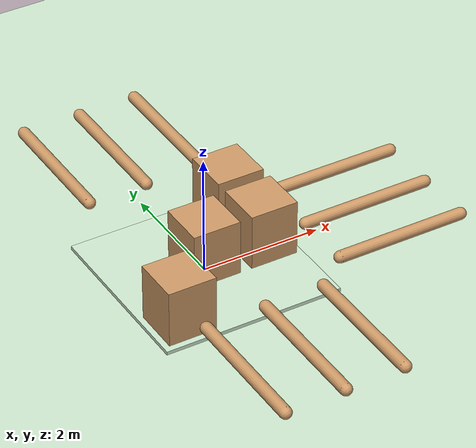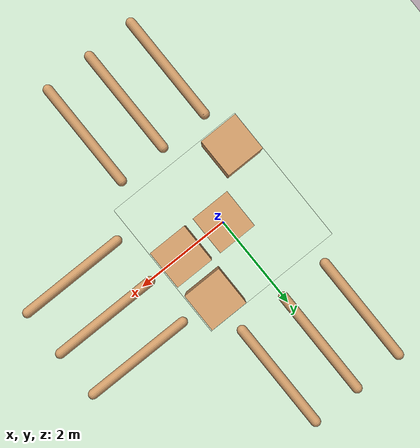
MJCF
<?xml version="1.0" encoding="UTF-8" ?>
<mujoco model="piston_arena">
    <compiler angle="degree" coordinate="global" inertiafromgeom="true"/>
    <default>
        <joint armature="1" damping="1"/>
        <geom conaffinity="1" condim="1" contype="1" margin="0.001" material="geom0" rgba="0.8 0.6 0.4 1" solimp="0.8 0.8 0.01" solref="0.02 1"/>
        <position ctrllimited="true" ctrlrange="0 3"/>
    </default>
    <option integrator="RK4" timestep="0.002"/>
    <visual>
        <map znear="0.02"/>
    </visual>
    <worldbody>
        <light cutoff="100" diffuse="1 1 1" dir="0 0 -1.3" directional="true" exponent="1" pos="0 0 1.3" specular="0.1 0.1 0.1"/>
        <geom type="plane" name="floor" size="20 20 0.01" pos="0 0 0" rgba="0.8 0.9 0.8 1" material="MatPlane" conaffinity="1" condim="3" />

        <geom type="box" name="stage" size="1.5 1.5 0.05" pos="0 0 0" rgba="0.8 0.9 0.8 1" material="geom0" conaffinity="1" condim="3" />

        <body>
            <geom type="box" pos="1 1 0.5" size="0.4 0.4 0.5" material="geom1"/>
        </body>
        <body>
            <geom type="box" pos="1 0 0.5" size="0.4 0.4 0.5" material="geom1"/>
        </body>
        <body>
            <geom type="box" pos="0 0 0.5" size="0.4 0.4 0.5" material="geom1"/>
        </body>
        <body>
            <geom type="box" pos="-1 -1 0.5" size="0.4 0.4 0.5" material="geom1"/>
        </body>

        <body name="piston0">
            <joint name="piston0-slider" type="slide" axis="0 -1 0" damping="1000"/>
            <geom type="capsule" fromto="1 4 0.5 1 1.8 0.5" size="0.1" material="geom2"/>
            <site name="piston_tip0" pos="1 1.8 0.5" type="box" group="4" size="0.2 0.2 0.2"/>
        </body>

        <body name="piston1">
            <joint name="piston1-slider" type="slide" axis="0 -1 0" damping="1000"/>
            <geom type="capsule" fromto="0 4 0.5 0 1.8 0.5" size="0.1" material="geom2"/>
            <site name="piston_tip1" pos="0 1.8 0.5" type="box" group="4" size="0.2 0.2 0.2"/>
        </body>

        <body name="piston2">
            <joint name="piston2-slider" type="slide" axis="0 -1 0" damping="1000"/>
            <geom type="capsule" fromto="-1 4 0.5 -1 1.8 0.5" size="0.1" material="geom2"/>
            <site name="piston_tip2" pos="-1 1.8 0.5" type="box" group="4" size="0.2 0.2 0.2"/>
        </body>

        <body name="piston3">
            <joint name="piston3-slider" type="slide" axis="-1 0 0" damping="1000"/>
            <geom type="capsule" fromto="1.8 1 0.2 4 1 0.2 " size="0.1" material="geom2"/>
            <site name="piston_tip3" pos="1.8 1 0.2" type="box" group="4" size="0.2 0.2 0.2"/>
        </body>

        <body name="piston4">
            <joint name="piston4-slider" type="slide" axis="-1 0 0" damping="1000"/>
            <geom type="capsule" fromto="1.8 0 0.2 4 0 0.2 " size="0.1" material="geom2"/>
            <site name="piston_tip4" pos="1.8 0 0.2" type="box" group="4" size="0.2 0.2 0.2"/>
        </body>

        <body name="piston5">
            <joint name="piston5-slider" type="slide" axis="-1 0 0" damping="1000"/>
            <geom type="capsule" fromto="1.8 -1 0.2 4 -1 0.2 " size="0.1" material="geom2"/>
            <site name="piston_tip5" pos="1.8 -1 0.2" type="box" group="4" size="0.2 0.2 0.2"/>
        </body>

        <body name="piston6">
            <joint name="piston6-slider" type="slide" axis="0 1 0" damping="1000"/>
            <geom type="capsule" fromto="1 -4 0.5 1 -1.8 0.5" size="0.1" material="geom2"/>
            <site name="piston_tip6" pos="1 -1.8 0.5" type="box" group="4" size="0.2 0.2 0.2"/>
        </body>

        <body name="piston7">
            <joint name="piston7-slider" type="slide" axis="0 1 0" damping="1000"/>
            <geom type="capsule" fromto="0 -4 0.5 0 -1.8 0.5" size="0.1" material="geom2"/>
            <site name="piston_tip7" pos="0 -1.8 0.5" type="box" group="4" size="0.2 0.2 0.2"/>
        </body>

        <body name="piston8">
            <joint name="piston8-slider" type="slide" axis="0 1 0" damping="1000"/>
            <geom type="capsule" fromto="-1 -4 0.5 -1 -1.8 0.5" size="0.1" material="geom2"/>
            <site name="piston_tip8" pos="-1 -1.8 0.5" type="box" group="4" size="0.2 0.2 0.2"/>
        </body>

    </worldbody>

    <actuator>
        <position joint="piston0-slider" kp="10000"/>
        <position joint="piston1-slider" kp="10000"/>
        <position joint="piston2-slider" kp="10000"/>
        <position joint="piston3-slider" kp="10000"/>
        <position joint="piston4-slider" kp="10000"/>
        <position joint="piston5-slider" kp="10000"/>
        <position joint="piston6-slider" kp="10000"/>
        <position joint="piston7-slider" kp="10000"/>
        <position joint="piston8-slider" kp="10000"/>
    </actuator>

    <sensor>
        <touch name="s_piston0" site="piston_tip0"/>
        <touch name="s_piston1" site="piston_tip1"/>
        <touch name="s_piston2" site="piston_tip2"/>
        <touch name="s_piston3" site="piston_tip3"/>
        <touch name="s_piston4" site="piston_tip4"/>
        <touch name="s_piston5" site="piston_tip5"/>
        <touch name="s_piston6" site="piston_tip6"/>
        <touch name="s_piston7" site="piston_tip7"/>
        <touch name="s_piston8" site="piston_tip8"/>
    </sensor>

    <asset>
        <texture name="texplane" builtin="checker" type="2d" height="100" width="100" rgb1="0 0 0" rgb2="0.8 0.8 0.8"/>
        <material name="MatPlane" reflectance="0.5" shininess="1" specular="1" texrepeat="60 60" texture="texplane"/>
        <texture builtin="flat" height="1278" mark="cross" markrgb="1 1 1" name="texgeom0" random="0.01" rgb1="0.8 0.6 0.4" rgb2="0.8 0.6 0.4" type="cube" width="127"/>
        <material name="geom0" texture="texgeom0" texuniform="true"/>
        <texture builtin="flat" height="1278" mark="cross" markrgb="1 1 1" name="texgeom1" random="0.01" rgb1="0.4 0.8 0.6" rgb2="0.4 0.8 0.6" type="cube" width="127"/>
        <material name="geom1" texture="texgeom1" texuniform="true"/>
        <texture builtin="flat" height="1278" mark="cross" markrgb="1 1 1" name="texgeom2" random="0.01" rgb1="1.0 0.2 0.2" rgb2="1.0 0.2 0.2" type="cube" width="127"/>
        <material name="geom2" texture="texgeom2" texuniform="true" reflectance="10.0" shininess="10.0"/>
    </asset>
</mujoco>
